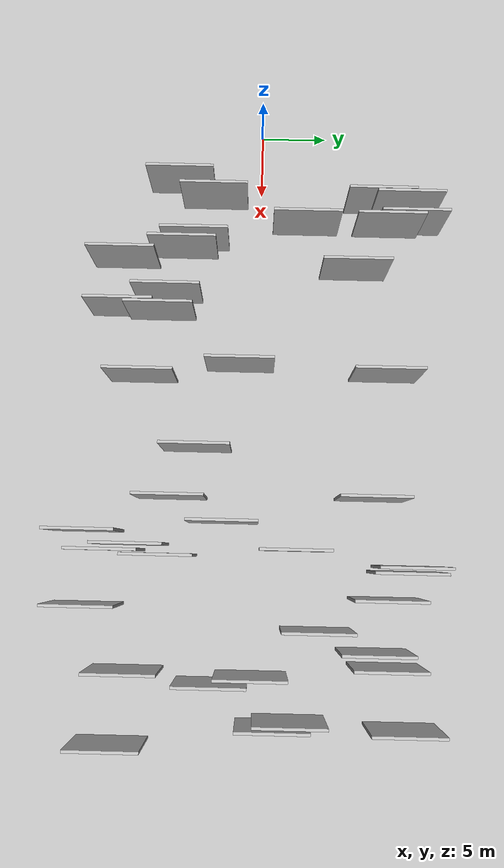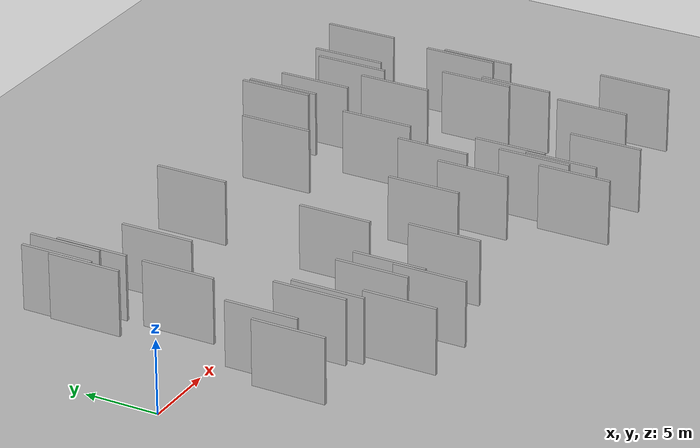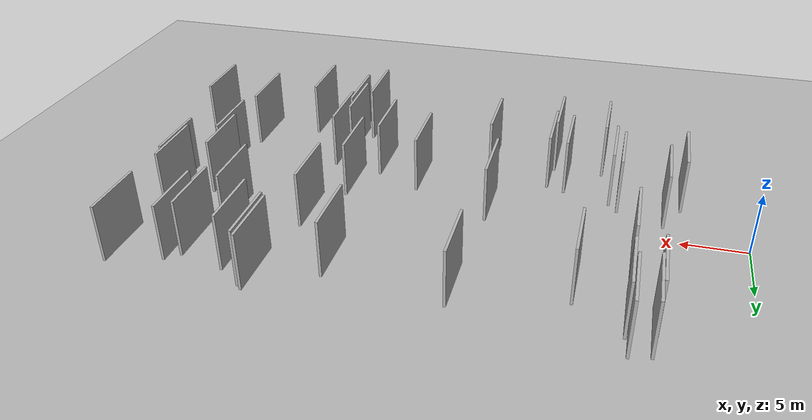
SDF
<?xml version="1.0" encoding="utf-8"?>

<sdf version="1.6">

   <world name="default">

      <gui fullscreen="0">

         <camera name="user_camera">

            <pose>-15 0 4.57585 0 0 0</pose>

            <view_controller>orbit</view_controller>

         </camera>

      </gui>

      <scene>

         <sky>

           <clouds>

             <speed>12</speed>

           </clouds>

         </sky>

         <ambient>0.4 0.4 0.4 1</ambient>

         <background>0.7 0.7 0.7 1</background>

         <shadows>1</shadows>

      </scene>

      <gravity>0 0 -9.8066</gravity>

      <magnetic_field>6e-06 2.3e-05 -4.2e-05</magnetic_field>

      <physics default="0" name="default_physics" type="ode">

         <ode>

            <solver>

               <type>quick</type>

               <iters>10</iters>

               <sor>1.0</sor>

               <use_dynamic_moi_rescaling>0</use_dynamic_moi_rescaling>

            </solver>

            <constraints>

               <cfm>0</cfm>

               <erp>0.2</erp>

               <contact_max_correcting_vel>100</contact_max_correcting_vel>

               <contact_surface_layer>0.001</contact_surface_layer>

            </constraints>

         </ode>

         <max_step_size>0.004</max_step_size>

         <real_time_factor>1</real_time_factor>

         <real_time_update_rate>250</real_time_update_rate>

      </physics>

      <light name="sun" type="directional">

         <cast_shadows>1</cast_shadows>

         <pose>0 0 10 0 0 0</pose>

         <diffuse>0.8 0.8 0.8 1</diffuse>

         <specular>0.2 0.2 0.2 1</specular>

         <attenuation>

            <range>1000</range>

            <constant>0.9</constant>

            <linear>0.01</linear>

            <quadratic>0.001</quadratic>

         </attenuation>

         <direction>-0.5 0.1 -0.9</direction>

      </light>

      <include>

         <name>ground_plane_1</name>

         <uri>model://HANNAS_ground_plane</uri>

         <pose>0 0 0  0 0 0</pose>

      </include>

      <include>

         <name>ground_plane_2</name>

         <uri>model://HANNAS_ground_plane</uri>

         <pose>100 0 0  0 0 0</pose>

      </include>

      <model name="HANNAS_wall_1">

         <static>1</static>

         <pose frame="">8.0894 11.3754 0.0 0.000000 0.000000 1.570796</pose>

         <link name="link">

            <pose frame="">0 0 2.50 0 0 0</pose>

            <collision name="collision">

               <geometry>

                  <box>

                     <size>5.00 0.2 5.00</size>

                  </box>

               </geometry>

               <max_contacts>10</max_contacts>

               <surface>

                  <contact>

                     <ode/>

                  </contact>

                  <bounce/>

                  <friction>

                     <torsional>

                        <ode/>

                     </torsional>

                     <ode/>

                  </friction>

               </surface>

            </collision>

            <visual name="visual">

               <cast_shadows>0</cast_shadows>

               <geometry>

                  <box>

                     <size>5.00 0.2 5.00</size>

                  </box>

               </geometry>

               <material>

                  <script>

                     <uri>model://HANNAS_wall/materials/scripts</uri>

                     <uri>model://HANNAS_wall/materials/textures</uri>

                     <name>vrc/HANNAS_wall</name>

                  </script>

               </material>

            </visual>

            <self_collide>0</self_collide>

            <enable_wind>0</enable_wind>

            <kinematic>0</kinematic>

         </link>

      </model>

      <model name="HANNAS_wall_2">

         <static>1</static>

         <pose frame="">8.3521 9.6411 0.0 0.000000 0.000000 1.570796</pose>

         <link name="link">

            <pose frame="">0 0 2.50 0 0 0</pose>

            <collision name="collision">

               <geometry>

                  <box>

                     <size>5.00 0.2 5.00</size>

                  </box>

               </geometry>

               <max_contacts>10</max_contacts>

               <surface>

                  <contact>

                     <ode/>

                  </contact>

                  <bounce/>

                  <friction>

                     <torsional>

                        <ode/>

                     </torsional>

                     <ode/>

                  </friction>

               </surface>

            </collision>

            <visual name="visual">

               <cast_shadows>0</cast_shadows>

               <geometry>

                  <box>

                     <size>5.00 0.2 5.00</size>

                  </box>

               </geometry>

               <material>

                  <script>

                     <uri>model://HANNAS_wall/materials/scripts</uri>

                     <uri>model://HANNAS_wall/materials/textures</uri>

                     <name>vrc/HANNAS_wall</name>

                  </script>

               </material>

            </visual>

            <self_collide>0</self_collide>

            <enable_wind>0</enable_wind>

            <kinematic>0</kinematic>

         </link>

      </model>

      <model name="HANNAS_wall_3">

         <static>1</static>

         <pose frame="">6.4059 8.9786 0.0 0.000000 0.000000 1.570796</pose>

         <link name="link">

            <pose frame="">0 0 2.50 0 0 0</pose>

            <collision name="collision">

               <geometry>

                  <box>

                     <size>5.00 0.2 5.00</size>

                  </box>

               </geometry>

               <max_contacts>10</max_contacts>

               <surface>

                  <contact>

                     <ode/>

                  </contact>

                  <bounce/>

                  <friction>

                     <torsional>

                        <ode/>

                     </torsional>

                     <ode/>

                  </friction>

               </surface>

            </collision>

            <visual name="visual">

               <cast_shadows>0</cast_shadows>

               <geometry>

                  <box>

                     <size>5.00 0.2 5.00</size>

                  </box>

               </geometry>

               <material>

                  <script>

                     <uri>model://HANNAS_wall/materials/scripts</uri>

                     <uri>model://HANNAS_wall/materials/textures</uri>

                     <name>vrc/HANNAS_wall</name>

                  </script>

               </material>

            </visual>

            <self_collide>0</self_collide>

            <enable_wind>0</enable_wind>

            <kinematic>0</kinematic>

         </link>

      </model>

      <model name="HANNAS_wall_4">

         <static>1</static>

         <pose frame="">29.0090 8.3412 0.0 0.000000 0.000000 1.570796</pose>

         <link name="link">

            <pose frame="">0 0 2.50 0 0 0</pose>

            <collision name="collision">

               <geometry>

                  <box>

                     <size>5.00 0.2 5.00</size>

                  </box>

               </geometry>

               <max_contacts>10</max_contacts>

               <surface>

                  <contact>

                     <ode/>

                  </contact>

                  <bounce/>

                  <friction>

                     <torsional>

                        <ode/>

                     </torsional>

                     <ode/>

                  </friction>

               </surface>

            </collision>

            <visual name="visual">

               <cast_shadows>0</cast_shadows>

               <geometry>

                  <box>

                     <size>5.00 0.2 5.00</size>

                  </box>

               </geometry>

               <material>

                  <script>

                     <uri>model://HANNAS_wall/materials/scripts</uri>

                     <uri>model://HANNAS_wall/materials/textures</uri>

                     <name>vrc/HANNAS_wall</name>

                  </script>

               </material>

            </visual>

            <self_collide>0</self_collide>

            <enable_wind>0</enable_wind>

            <kinematic>0</kinematic>

         </link>

      </model>

      <model name="HANNAS_wall_5">

         <static>1</static>

         <pose frame="">33.7527 11.0372 0.0 0.000000 0.000000 1.570796</pose>

         <link name="link">

            <pose frame="">0 0 2.50 0 0 0</pose>

            <collision name="collision">

               <geometry>

                  <box>

                     <size>5.00 0.2 5.00</size>

                  </box>

               </geometry>

               <max_contacts>10</max_contacts>

               <surface>

                  <contact>

                     <ode/>

                  </contact>

                  <bounce/>

                  <friction>

                     <torsional>

                        <ode/>

                     </torsional>

                     <ode/>

                  </friction>

               </surface>

            </collision>

            <visual name="visual">

               <cast_shadows>0</cast_shadows>

               <geometry>

                  <box>

                     <size>5.00 0.2 5.00</size>

                  </box>

               </geometry>

               <material>

                  <script>

                     <uri>model://HANNAS_wall/materials/scripts</uri>

                     <uri>model://HANNAS_wall/materials/textures</uri>

                     <name>vrc/HANNAS_wall</name>

                  </script>

               </material>

            </visual>

            <self_collide>0</self_collide>

            <enable_wind>0</enable_wind>

            <kinematic>0</kinematic>

         </link>

      </model>

      <model name="HANNAS_wall_6">

         <static>1</static>

         <pose frame="">11.3258 -10.1965 0.0 0.000000 0.000000 1.570796</pose>

         <link name="link">

            <pose frame="">0 0 2.50 0 0 0</pose>

            <collision name="collision">

               <geometry>

                  <box>

                     <size>5.00 0.2 5.00</size>

                  </box>

               </geometry>

               <max_contacts>10</max_contacts>

               <surface>

                  <contact>

                     <ode/>

                  </contact>

                  <bounce/>

                  <friction>

                     <torsional>

                        <ode/>

                     </torsional>

                     <ode/>

                  </friction>

               </surface>

            </collision>

            <visual name="visual">

               <cast_shadows>0</cast_shadows>

               <geometry>

                  <box>

                     <size>5.00 0.2 5.00</size>

                  </box>

               </geometry>

               <material>

                  <script>

                     <uri>model://HANNAS_wall/materials/scripts</uri>

                     <uri>model://HANNAS_wall/materials/textures</uri>

                     <name>vrc/HANNAS_wall</name>

                  </script>

               </material>

            </visual>

            <self_collide>0</self_collide>

            <enable_wind>0</enable_wind>

            <kinematic>0</kinematic>

         </link>

      </model>

      <model name="HANNAS_wall_7">

         <static>1</static>

         <pose frame="">6.6177 11.0654 0.0 0.000000 0.000000 1.570796</pose>

         <link name="link">

            <pose frame="">0 0 2.50 0 0 0</pose>

            <collision name="collision">

               <geometry>

                  <box>

                     <size>5.00 0.2 5.00</size>

                  </box>

               </geometry>

               <max_contacts>10</max_contacts>

               <surface>

                  <contact>

                     <ode/>

                  </contact>

                  <bounce/>

                  <friction>

                     <torsional>

                        <ode/>

                     </torsional>

                     <ode/>

                  </friction>

               </surface>

            </collision>

            <visual name="visual">

               <cast_shadows>0</cast_shadows>

               <geometry>

                  <box>

                     <size>5.00 0.2 5.00</size>

                  </box>

               </geometry>

               <material>

                  <script>

                     <uri>model://HANNAS_wall/materials/scripts</uri>

                     <uri>model://HANNAS_wall/materials/textures</uri>

                     <name>vrc/HANNAS_wall</name>

                  </script>

               </material>

            </visual>

            <self_collide>0</self_collide>

            <enable_wind>0</enable_wind>

            <kinematic>0</kinematic>

         </link>

      </model>

      <model name="HANNAS_wall_8">

         <static>1</static>

         <pose frame="">44.5054 10.3748 0.0 0.000000 0.000000 1.570796</pose>

         <link name="link">

            <pose frame="">0 0 2.50 0 0 0</pose>

            <collision name="collision">

               <geometry>

                  <box>

                     <size>5.00 0.2 5.00</size>

                  </box>

               </geometry>

               <max_contacts>10</max_contacts>

               <surface>

                  <contact>

                     <ode/>

                  </contact>

                  <bounce/>

                  <friction>

                     <torsional>

                        <ode/>

                     </torsional>

                     <ode/>

                  </friction>

               </surface>

            </collision>

            <visual name="visual">

               <cast_shadows>0</cast_shadows>

               <geometry>

                  <box>

                     <size>5.00 0.2 5.00</size>

                  </box>

               </geometry>

               <material>

                  <script>

                     <uri>model://HANNAS_wall/materials/scripts</uri>

                     <uri>model://HANNAS_wall/materials/textures</uri>

                     <name>vrc/HANNAS_wall</name>

                  </script>

               </material>

            </visual>

            <self_collide>0</self_collide>

            <enable_wind>0</enable_wind>

            <kinematic>0</kinematic>

         </link>

      </model>

      <model name="HANNAS_wall_9">

         <static>1</static>

         <pose frame="">32.5370 -8.6810 0.0 0.000000 0.000000 1.570796</pose>

         <link name="link">

            <pose frame="">0 0 2.50 0 0 0</pose>

            <collision name="collision">

               <geometry>

                  <box>

                     <size>5.00 0.2 5.00</size>

                  </box>

               </geometry>

               <max_contacts>10</max_contacts>

               <surface>

                  <contact>

                     <ode/>

                  </contact>

                  <bounce/>

                  <friction>

                     <torsional>

                        <ode/>

                     </torsional>

                     <ode/>

                  </friction>

               </surface>

            </collision>

            <visual name="visual">

               <cast_shadows>0</cast_shadows>

               <geometry>

                  <box>

                     <size>5.00 0.2 5.00</size>

                  </box>

               </geometry>

               <material>

                  <script>

                     <uri>model://HANNAS_wall/materials/scripts</uri>

                     <uri>model://HANNAS_wall/materials/textures</uri>

                     <name>vrc/HANNAS_wall</name>

                  </script>

               </material>

            </visual>

            <self_collide>0</self_collide>

            <enable_wind>0</enable_wind>

            <kinematic>0</kinematic>

         </link>

      </model>

      <model name="HANNAS_wall_10">

         <static>1</static>

         <pose frame="">30.8532 -2.2202 0.0 0.000000 0.000000 1.570796</pose>

         <link name="link">

            <pose frame="">0 0 2.50 0 0 0</pose>

            <collision name="collision">

               <geometry>

                  <box>

                     <size>5.00 0.2 5.00</size>

                  </box>

               </geometry>

               <max_contacts>10</max_contacts>

               <surface>

                  <contact>

                     <ode/>

                  </contact>

                  <bounce/>

                  <friction>

                     <torsional>

                        <ode/>

                     </torsional>

                     <ode/>

                  </friction>

               </surface>

            </collision>

            <visual name="visual">

               <cast_shadows>0</cast_shadows>

               <geometry>

                  <box>

                     <size>5.00 0.2 5.00</size>

                  </box>

               </geometry>

               <material>

                  <script>

                     <uri>model://HANNAS_wall/materials/scripts</uri>

                     <uri>model://HANNAS_wall/materials/textures</uri>

                     <name>vrc/HANNAS_wall</name>

                  </script>

               </material>

            </visual>

            <self_collide>0</self_collide>

            <enable_wind>0</enable_wind>

            <kinematic>0</kinematic>

         </link>

      </model>

      <model name="HANNAS_wall_11">

         <static>1</static>

         <pose frame="">33.2506 -6.6070 0.0 0.000000 0.000000 1.570796</pose>

         <link name="link">

            <pose frame="">0 0 2.50 0 0 0</pose>

            <collision name="collision">

               <geometry>

                  <box>

                     <size>5.00 0.2 5.00</size>

                  </box>

               </geometry>

               <max_contacts>10</max_contacts>

               <surface>

                  <contact>

                     <ode/>

                  </contact>

                  <bounce/>

                  <friction>

                     <torsional>

                        <ode/>

                     </torsional>

                     <ode/>

                  </friction>

               </surface>

            </collision>

            <visual name="visual">

               <cast_shadows>0</cast_shadows>

               <geometry>

                  <box>

                     <size>5.00 0.2 5.00</size>

                  </box>

               </geometry>

               <material>

                  <script>

                     <uri>model://HANNAS_wall/materials/scripts</uri>

                     <uri>model://HANNAS_wall/materials/textures</uri>

                     <name>vrc/HANNAS_wall</name>

                  </script>

               </material>

            </visual>

            <self_collide>0</self_collide>

            <enable_wind>0</enable_wind>

            <kinematic>0</kinematic>

         </link>

      </model>

      <model name="HANNAS_wall_12">

         <static>1</static>

         <pose frame="">45.8108 -9.5668 0.0 0.000000 0.000000 1.570796</pose>

         <link name="link">

            <pose frame="">0 0 2.50 0 0 0</pose>

            <collision name="collision">

               <geometry>

                  <box>

                     <size>5.00 0.2 5.00</size>

                  </box>

               </geometry>

               <max_contacts>10</max_contacts>

               <surface>

                  <contact>

                     <ode/>

                  </contact>

                  <bounce/>

                  <friction>

                     <torsional>

                        <ode/>

                     </torsional>

                     <ode/>

                  </friction>

               </surface>

            </collision>

            <visual name="visual">

               <cast_shadows>0</cast_shadows>

               <geometry>

                  <box>

                     <size>5.00 0.2 5.00</size>

                  </box>

               </geometry>

               <material>

                  <script>

                     <uri>model://HANNAS_wall/materials/scripts</uri>

                     <uri>model://HANNAS_wall/materials/textures</uri>

                     <name>vrc/HANNAS_wall</name>

                  </script>

               </material>

            </visual>

            <self_collide>0</self_collide>

            <enable_wind>0</enable_wind>

            <kinematic>0</kinematic>

         </link>

      </model>

      <model name="HANNAS_wall_13">

         <static>1</static>

         <pose frame="">38.1788 4.4602 0.0 0.000000 0.000000 1.570796</pose>

         <link name="link">

            <pose frame="">0 0 2.50 0 0 0</pose>

            <collision name="collision">

               <geometry>

                  <box>

                     <size>5.00 0.2 5.00</size>

                  </box>

               </geometry>

               <max_contacts>10</max_contacts>

               <surface>

                  <contact>

                     <ode/>

                  </contact>

                  <bounce/>

                  <friction>

                     <torsional>

                        <ode/>

                     </torsional>

                     <ode/>

                  </friction>

               </surface>

            </collision>

            <visual name="visual">

               <cast_shadows>0</cast_shadows>

               <geometry>

                  <box>

                     <size>5.00 0.2 5.00</size>

                  </box>

               </geometry>

               <material>

                  <script>

                     <uri>model://HANNAS_wall/materials/scripts</uri>

                     <uri>model://HANNAS_wall/materials/textures</uri>

                     <name>vrc/HANNAS_wall</name>

                  </script>

               </material>

            </visual>

            <self_collide>0</self_collide>

            <enable_wind>0</enable_wind>

            <kinematic>0</kinematic>

         </link>

      </model>

      <model name="HANNAS_wall_14">

         <static>1</static>

         <pose frame="">19.9923 9.3936 0.0 0.000000 0.000000 1.570796</pose>

         <link name="link">

            <pose frame="">0 0 2.50 0 0 0</pose>

            <collision name="collision">

               <geometry>

                  <box>

                     <size>5.00 0.2 5.00</size>

                  </box>

               </geometry>

               <max_contacts>10</max_contacts>

               <surface>

                  <contact>

                     <ode/>

                  </contact>

                  <bounce/>

                  <friction>

                     <torsional>

                        <ode/>

                     </torsional>

                     <ode/>

                  </friction>

               </surface>

            </collision>

            <visual name="visual">

               <cast_shadows>0</cast_shadows>

               <geometry>

                  <box>

                     <size>5.00 0.2 5.00</size>

                  </box>

               </geometry>

               <material>

                  <script>

                     <uri>model://HANNAS_wall/materials/scripts</uri>

                     <uri>model://HANNAS_wall/materials/textures</uri>

                     <name>vrc/HANNAS_wall</name>

                  </script>

               </material>

            </visual>

            <self_collide>0</self_collide>

            <enable_wind>0</enable_wind>

            <kinematic>0</kinematic>

         </link>

      </model>

      <model name="HANNAS_wall_15">

         <static>1</static>

         <pose frame="">19.4373 -1.2963 0.0 0.000000 0.000000 1.570796</pose>

         <link name="link">

            <pose frame="">0 0 2.50 0 0 0</pose>

            <collision name="collision">

               <geometry>

                  <box>

                     <size>5.00 0.2 5.00</size>

                  </box>

               </geometry>

               <max_contacts>10</max_contacts>

               <surface>

                  <contact>

                     <ode/>

                  </contact>

                  <bounce/>

                  <friction>

                     <torsional>

                        <ode/>

                     </torsional>

                     <ode/>

                  </friction>

               </surface>

            </collision>

            <visual name="visual">

               <cast_shadows>0</cast_shadows>

               <geometry>

                  <box>

                     <size>5.00 0.2 5.00</size>

                  </box>

               </geometry>

               <material>

                  <script>

                     <uri>model://HANNAS_wall/materials/scripts</uri>

                     <uri>model://HANNAS_wall/materials/textures</uri>

                     <name>vrc/HANNAS_wall</name>

                  </script>

               </material>

            </visual>

            <self_collide>0</self_collide>

            <enable_wind>0</enable_wind>

            <kinematic>0</kinematic>

         </link>

      </model>

      <model name="HANNAS_wall_16">

         <static>1</static>

         <pose frame="">40.5126 9.2407 0.0 0.000000 0.000000 1.570796</pose>

         <link name="link">

            <pose frame="">0 0 2.50 0 0 0</pose>

            <collision name="collision">

               <geometry>

                  <box>

                     <size>5.00 0.2 5.00</size>

                  </box>

               </geometry>

               <max_contacts>10</max_contacts>

               <surface>

                  <contact>

                     <ode/>

                  </contact>

                  <bounce/>

                  <friction>

                     <torsional>

                        <ode/>

                     </torsional>

                     <ode/>

                  </friction>

               </surface>

            </collision>

            <visual name="visual">

               <cast_shadows>0</cast_shadows>

               <geometry>

                  <box>

                     <size>5.00 0.2 5.00</size>

                  </box>

               </geometry>

               <material>

                  <script>

                     <uri>model://HANNAS_wall/materials/scripts</uri>

                     <uri>model://HANNAS_wall/materials/textures</uri>

                     <name>vrc/HANNAS_wall</name>

                  </script>

               </material>

            </visual>

            <self_collide>0</self_collide>

            <enable_wind>0</enable_wind>

            <kinematic>0</kinematic>

         </link>

      </model>

      <model name="HANNAS_wall_17">

         <static>1</static>

         <pose frame="">11.9349 7.1002 0.0 0.000000 0.000000 1.570796</pose>

         <link name="link">

            <pose frame="">0 0 2.50 0 0 0</pose>

            <collision name="collision">

               <geometry>

                  <box>

                     <size>5.00 0.2 5.00</size>

                  </box>

               </geometry>

               <max_contacts>10</max_contacts>

               <surface>

                  <contact>

                     <ode/>

                  </contact>

                  <bounce/>

                  <friction>

                     <torsional>

                        <ode/>

                     </torsional>

                     <ode/>

                  </friction>

               </surface>

            </collision>

            <visual name="visual">

               <cast_shadows>0</cast_shadows>

               <geometry>

                  <box>

                     <size>5.00 0.2 5.00</size>

                  </box>

               </geometry>

               <material>

                  <script>

                     <uri>model://HANNAS_wall/materials/scripts</uri>

                     <uri>model://HANNAS_wall/materials/textures</uri>

                     <name>vrc/HANNAS_wall</name>

                  </script>

               </material>

            </visual>

            <self_collide>0</self_collide>

            <enable_wind>0</enable_wind>

            <kinematic>0</kinematic>

         </link>

      </model>

      <model name="HANNAS_wall_18">

         <static>1</static>

         <pose frame="">32.7315 2.8842 0.0 0.000000 0.000000 1.570796</pose>

         <link name="link">

            <pose frame="">0 0 2.50 0 0 0</pose>

            <collision name="collision">

               <geometry>

                  <box>

                     <size>5.00 0.2 5.00</size>

                  </box>

               </geometry>

               <max_contacts>10</max_contacts>

               <surface>

                  <contact>

                     <ode/>

                  </contact>

                  <bounce/>

                  <friction>

                     <torsional>

                        <ode/>

                     </torsional>

                     <ode/>

                  </friction>

               </surface>

            </collision>

            <visual name="visual">

               <cast_shadows>0</cast_shadows>

               <geometry>

                  <box>

                     <size>5.00 0.2 5.00</size>

                  </box>

               </geometry>

               <material>

                  <script>

                     <uri>model://HANNAS_wall/materials/scripts</uri>

                     <uri>model://HANNAS_wall/materials/textures</uri>

                     <name>vrc/HANNAS_wall</name>

                  </script>

               </material>

            </visual>

            <self_collide>0</self_collide>

            <enable_wind>0</enable_wind>

            <kinematic>0</kinematic>

         </link>

      </model>

      <model name="HANNAS_wall_19">

         <static>1</static>

         <pose frame="">20.4028 -8.4945 0.0 0.000000 0.000000 1.570796</pose>

         <link name="link">

            <pose frame="">0 0 2.50 0 0 0</pose>

            <collision name="collision">

               <geometry>

                  <box>

                     <size>5.00 0.2 5.00</size>

                  </box>

               </geometry>

               <max_contacts>10</max_contacts>

               <surface>

                  <contact>

                     <ode/>

                  </contact>

                  <bounce/>

                  <friction>

                     <torsional>

                        <ode/>

                     </torsional>

                     <ode/>

                  </friction>

               </surface>

            </collision>

            <visual name="visual">

               <cast_shadows>0</cast_shadows>

               <geometry>

                  <box>

                     <size>5.00 0.2 5.00</size>

                  </box>

               </geometry>

               <material>

                  <script>

                     <uri>model://HANNAS_wall/materials/scripts</uri>

                     <uri>model://HANNAS_wall/materials/textures</uri>

                     <name>vrc/HANNAS_wall</name>

                  </script>

               </material>

            </visual>

            <self_collide>0</self_collide>

            <enable_wind>0</enable_wind>

            <kinematic>0</kinematic>

         </link>

      </model>

      <model name="HANNAS_wall_20">

         <static>1</static>

         <pose frame="">4.9994 -6.1036 0.0 0.000000 0.000000 1.570796</pose>

         <link name="link">

            <pose frame="">0 0 2.50 0 0 0</pose>

            <collision name="collision">

               <geometry>

                  <box>

                     <size>5.00 0.2 5.00</size>

                  </box>

               </geometry>

               <max_contacts>10</max_contacts>

               <surface>

                  <contact>

                     <ode/>

                  </contact>

                  <bounce/>

                  <friction>

                     <torsional>

                        <ode/>

                     </torsional>

                     <ode/>

                  </friction>

               </surface>

            </collision>

            <visual name="visual">

               <cast_shadows>0</cast_shadows>

               <geometry>

                  <box>

                     <size>5.00 0.2 5.00</size>

                  </box>

               </geometry>

               <material>

                  <script>

                     <uri>model://HANNAS_wall/materials/scripts</uri>

                     <uri>model://HANNAS_wall/materials/textures</uri>

                     <name>vrc/HANNAS_wall</name>

                  </script>

               </material>

            </visual>

            <self_collide>0</self_collide>

            <enable_wind>0</enable_wind>

            <kinematic>0</kinematic>

         </link>

      </model>

      <model name="HANNAS_wall_21">

         <static>1</static>

         <pose frame="">10.4381 -5.7567 0.0 0.000000 0.000000 1.570796</pose>

         <link name="link">

            <pose frame="">0 0 2.50 0 0 0</pose>

            <collision name="collision">

               <geometry>

                  <box>

                     <size>5.00 0.2 5.00</size>

                  </box>

               </geometry>

               <max_contacts>10</max_contacts>

               <surface>

                  <contact>

                     <ode/>

                  </contact>

                  <bounce/>

                  <friction>

                     <torsional>

                        <ode/>

                     </torsional>

                     <ode/>

                  </friction>

               </surface>

            </collision>

            <visual name="visual">

               <cast_shadows>0</cast_shadows>

               <geometry>

                  <box>

                     <size>5.00 0.2 5.00</size>

                  </box>

               </geometry>

               <material>

                  <script>

                     <uri>model://HANNAS_wall/materials/scripts</uri>

                     <uri>model://HANNAS_wall/materials/textures</uri>

                     <name>vrc/HANNAS_wall</name>

                  </script>

               </material>

            </visual>

            <self_collide>0</self_collide>

            <enable_wind>0</enable_wind>

            <kinematic>0</kinematic>

         </link>

      </model>

      <model name="HANNAS_wall_22">

         <static>1</static>

         <pose frame="">44.1370 2.6142 0.0 0.000000 0.000000 1.570796</pose>

         <link name="link">

            <pose frame="">0 0 2.50 0 0 0</pose>

            <collision name="collision">

               <geometry>

                  <box>

                     <size>5.00 0.2 5.00</size>

                  </box>

               </geometry>

               <max_contacts>10</max_contacts>

               <surface>

                  <contact>

                     <ode/>

                  </contact>

                  <bounce/>

                  <friction>

                     <torsional>

                        <ode/>

                     </torsional>

                     <ode/>

                  </friction>

               </surface>

            </collision>

            <visual name="visual">

               <cast_shadows>0</cast_shadows>

               <geometry>

                  <box>

                     <size>5.00 0.2 5.00</size>

                  </box>

               </geometry>

               <material>

                  <script>

                     <uri>model://HANNAS_wall/materials/scripts</uri>

                     <uri>model://HANNAS_wall/materials/textures</uri>

                     <name>vrc/HANNAS_wall</name>

                  </script>

               </material>

            </visual>

            <self_collide>0</self_collide>

            <enable_wind>0</enable_wind>

            <kinematic>0</kinematic>

         </link>

      </model>

      <model name="HANNAS_wall_23">

         <static>1</static>

         <pose frame="">29.1680 -5.9861 0.0 0.000000 0.000000 1.570796</pose>

         <link name="link">

            <pose frame="">0 0 2.50 0 0 0</pose>

            <collision name="collision">

               <geometry>

                  <box>

                     <size>5.00 0.2 5.00</size>

                  </box>

               </geometry>

               <max_contacts>10</max_contacts>

               <surface>

                  <contact>

                     <ode/>

                  </contact>

                  <bounce/>

                  <friction>

                     <torsional>

                        <ode/>

                     </torsional>

                     <ode/>

                  </friction>

               </surface>

            </collision>

            <visual name="visual">

               <cast_shadows>0</cast_shadows>

               <geometry>

                  <box>

                     <size>5.00 0.2 5.00</size>

                  </box>

               </geometry>

               <material>

                  <script>

                     <uri>model://HANNAS_wall/materials/scripts</uri>

                     <uri>model://HANNAS_wall/materials/textures</uri>

                     <name>vrc/HANNAS_wall</name>

                  </script>

               </material>

            </visual>

            <self_collide>0</self_collide>

            <enable_wind>0</enable_wind>

            <kinematic>0</kinematic>

         </link>

      </model>

      <model name="HANNAS_wall_24">

         <static>1</static>

         <pose frame="">36.7551 -11.7292 0.0 0.000000 0.000000 1.570796</pose>

         <link name="link">

            <pose frame="">0 0 2.50 0 0 0</pose>

            <collision name="collision">

               <geometry>

                  <box>

                     <size>5.00 0.2 5.00</size>

                  </box>

               </geometry>

               <max_contacts>10</max_contacts>

               <surface>

                  <contact>

                     <ode/>

                  </contact>

                  <bounce/>

                  <friction>

                     <torsional>

                        <ode/>

                     </torsional>

                     <ode/>

                  </friction>

               </surface>

            </collision>

            <visual name="visual">

               <cast_shadows>0</cast_shadows>

               <geometry>

                  <box>

                     <size>5.00 0.2 5.00</size>

                  </box>

               </geometry>

               <material>

                  <script>

                     <uri>model://HANNAS_wall/materials/scripts</uri>

                     <uri>model://HANNAS_wall/materials/textures</uri>

                     <name>vrc/HANNAS_wall</name>

                  </script>

               </material>

            </visual>

            <self_collide>0</self_collide>

            <enable_wind>0</enable_wind>

            <kinematic>0</kinematic>

         </link>

      </model>

      <model name="HANNAS_wall_25">

         <static>1</static>

         <pose frame="">8.3094 3.4463 0.0 0.000000 0.000000 1.570796</pose>

         <link name="link">

            <pose frame="">0 0 2.50 0 0 0</pose>

            <collision name="collision">

               <geometry>

                  <box>

                     <size>5.00 0.2 5.00</size>

                  </box>

               </geometry>

               <max_contacts>10</max_contacts>

               <surface>

                  <contact>

                     <ode/>

                  </contact>

                  <bounce/>

                  <friction>

                     <torsional>

                        <ode/>

                     </torsional>

                     <ode/>

                  </friction>

               </surface>

            </collision>

            <visual name="visual">

               <cast_shadows>0</cast_shadows>

               <geometry>

                  <box>

                     <size>5.00 0.2 5.00</size>

                  </box>

               </geometry>

               <material>

                  <script>

                     <uri>model://HANNAS_wall/materials/scripts</uri>

                     <uri>model://HANNAS_wall/materials/textures</uri>

                     <name>vrc/HANNAS_wall</name>

                  </script>

               </material>

            </visual>

            <self_collide>0</self_collide>

            <enable_wind>0</enable_wind>

            <kinematic>0</kinematic>

         </link>

      </model>

      <model name="HANNAS_wall_26">

         <static>1</static>

         <pose frame="">41.7641 -2.7536 0.0 0.000000 0.000000 1.570796</pose>

         <link name="link">

            <pose frame="">0 0 2.50 0 0 0</pose>

            <collision name="collision">

               <geometry>

                  <box>

                     <size>5.00 0.2 5.00</size>

                  </box>

               </geometry>

               <max_contacts>10</max_contacts>

               <surface>

                  <contact>

                     <ode/>

                  </contact>

                  <bounce/>

                  <friction>

                     <torsional>

                        <ode/>

                     </torsional>

                     <ode/>

                  </friction>

               </surface>

            </collision>

            <visual name="visual">

               <cast_shadows>0</cast_shadows>

               <geometry>

                  <box>

                     <size>5.00 0.2 5.00</size>

                  </box>

               </geometry>

               <material>

                  <script>

                     <uri>model://HANNAS_wall/materials/scripts</uri>

                     <uri>model://HANNAS_wall/materials/textures</uri>

                     <name>vrc/HANNAS_wall</name>

                  </script>

               </material>

            </visual>

            <self_collide>0</self_collide>

            <enable_wind>0</enable_wind>

            <kinematic>0</kinematic>

         </link>

      </model>

      <model name="HANNAS_wall_27">

         <static>1</static>

         <pose frame="">35.9946 9.3151 0.0 0.000000 0.000000 1.570796</pose>

         <link name="link">

            <pose frame="">0 0 2.50 0 0 0</pose>

            <collision name="collision">

               <geometry>

                  <box>

                     <size>5.00 0.2 5.00</size>

                  </box>

               </geometry>

               <max_contacts>10</max_contacts>

               <surface>

                  <contact>

                     <ode/>

                  </contact>

                  <bounce/>

                  <friction>

                     <torsional>

                        <ode/>

                     </torsional>

                     <ode/>

                  </friction>

               </surface>

            </collision>

            <visual name="visual">

               <cast_shadows>0</cast_shadows>

               <geometry>

                  <box>

                     <size>5.00 0.2 5.00</size>

                  </box>

               </geometry>

               <material>

                  <script>

                     <uri>model://HANNAS_wall/materials/scripts</uri>

                     <uri>model://HANNAS_wall/materials/textures</uri>

                     <name>vrc/HANNAS_wall</name>

                  </script>

               </material>

            </visual>

            <self_collide>0</self_collide>

            <enable_wind>0</enable_wind>

            <kinematic>0</kinematic>

         </link>

      </model>

      <model name="HANNAS_wall_28">

         <static>1</static>

         <pose frame="">6.2665 -3.5372 0.0 0.000000 0.000000 1.570796</pose>

         <link name="link">

            <pose frame="">0 0 2.50 0 0 0</pose>

            <collision name="collision">

               <geometry>

                  <box>

                     <size>5.00 0.2 5.00</size>

                  </box>

               </geometry>

               <max_contacts>10</max_contacts>

               <surface>

                  <contact>

                     <ode/>

                  </contact>

                  <bounce/>

                  <friction>

                     <torsional>

                        <ode/>

                     </torsional>

                     <ode/>

                  </friction>

               </surface>

            </collision>

            <visual name="visual">

               <cast_shadows>0</cast_shadows>

               <geometry>

                  <box>

                     <size>5.00 0.2 5.00</size>

                  </box>

               </geometry>

               <material>

                  <script>

                     <uri>model://HANNAS_wall/materials/scripts</uri>

                     <uri>model://HANNAS_wall/materials/textures</uri>

                     <name>vrc/HANNAS_wall</name>

                  </script>

               </material>

            </visual>

            <self_collide>0</self_collide>

            <enable_wind>0</enable_wind>

            <kinematic>0</kinematic>

         </link>

      </model>

      <model name="HANNAS_wall_29">

         <static>1</static>

         <pose frame="">44.4518 1.4576 0.0 0.000000 0.000000 1.570796</pose>

         <link name="link">

            <pose frame="">0 0 2.50 0 0 0</pose>

            <collision name="collision">

               <geometry>

                  <box>

                     <size>5.00 0.2 5.00</size>

                  </box>

               </geometry>

               <max_contacts>10</max_contacts>

               <surface>

                  <contact>

                     <ode/>

                  </contact>

                  <bounce/>

                  <friction>

                     <torsional>

                        <ode/>

                     </torsional>

                     <ode/>

                  </friction>

               </surface>

            </collision>

            <visual name="visual">

               <cast_shadows>0</cast_shadows>

               <geometry>

                  <box>

                     <size>5.00 0.2 5.00</size>

                  </box>

               </geometry>

               <material>

                  <script>

                     <uri>model://HANNAS_wall/materials/scripts</uri>

                     <uri>model://HANNAS_wall/materials/textures</uri>

                     <name>vrc/HANNAS_wall</name>

                  </script>

               </material>

            </visual>

            <self_collide>0</self_collide>

            <enable_wind>0</enable_wind>

            <kinematic>0</kinematic>

         </link>

      </model>

      <model name="HANNAS_wall_30">

         <static>1</static>

         <pose frame="">39.5309 8.4427 0.0 0.000000 0.000000 1.570796</pose>

         <link name="link">

            <pose frame="">0 0 2.50 0 0 0</pose>

            <collision name="collision">

               <geometry>

                  <box>

                     <size>5.00 0.2 5.00</size>

                  </box>

               </geometry>

               <max_contacts>10</max_contacts>

               <surface>

                  <contact>

                     <ode/>

                  </contact>

                  <bounce/>

                  <friction>

                     <torsional>

                        <ode/>

                     </torsional>

                     <ode/>

                  </friction>

               </surface>

            </collision>

            <visual name="visual">

               <cast_shadows>0</cast_shadows>

               <geometry>

                  <box>

                     <size>5.00 0.2 5.00</size>

                  </box>

               </geometry>

               <material>

                  <script>

                     <uri>model://HANNAS_wall/materials/scripts</uri>

                     <uri>model://HANNAS_wall/materials/textures</uri>

                     <name>vrc/HANNAS_wall</name>

                  </script>

               </material>

            </visual>

            <self_collide>0</self_collide>

            <enable_wind>0</enable_wind>

            <kinematic>0</kinematic>

         </link>

      </model>

      <model name="HANNAS_wall_31">

         <static>1</static>

         <pose frame="">34.1267 10.7024 0.0 0.000000 0.000000 1.570796</pose>

         <link name="link">

            <pose frame="">0 0 2.50 0 0 0</pose>

            <collision name="collision">

               <geometry>

                  <box>

                     <size>5.00 0.2 5.00</size>

                  </box>

               </geometry>

               <max_contacts>10</max_contacts>

               <surface>

                  <contact>

                     <ode/>

                  </contact>

                  <bounce/>

                  <friction>

                     <torsional>

                        <ode/>

                     </torsional>

                     <ode/>

                  </friction>

               </surface>

            </collision>

            <visual name="visual">

               <cast_shadows>0</cast_shadows>

               <geometry>

                  <box>

                     <size>5.00 0.2 5.00</size>

                  </box>

               </geometry>

               <material>

                  <script>

                     <uri>model://HANNAS_wall/materials/scripts</uri>

                     <uri>model://HANNAS_wall/materials/textures</uri>

                     <name>vrc/HANNAS_wall</name>

                  </script>

               </material>

            </visual>

            <self_collide>0</self_collide>

            <enable_wind>0</enable_wind>

            <kinematic>0</kinematic>

         </link>

      </model>

      <model name="HANNAS_wall_32">

         <static>1</static>

         <pose frame="">32.9575 -10.3869 0.0 0.000000 0.000000 1.570796</pose>

         <link name="link">

            <pose frame="">0 0 2.50 0 0 0</pose>

            <collision name="collision">

               <geometry>

                  <box>

                     <size>5.00 0.2 5.00</size>

                  </box>

               </geometry>

               <max_contacts>10</max_contacts>

               <surface>

                  <contact>

                     <ode/>

                  </contact>

                  <bounce/>

                  <friction>

                     <torsional>

                        <ode/>

                     </torsional>

                     <ode/>

                  </friction>

               </surface>

            </collision>

            <visual name="visual">

               <cast_shadows>0</cast_shadows>

               <geometry>

                  <box>

                     <size>5.00 0.2 5.00</size>

                  </box>

               </geometry>

               <material>

                  <script>

                     <uri>model://HANNAS_wall/materials/scripts</uri>

                     <uri>model://HANNAS_wall/materials/textures</uri>

                     <name>vrc/HANNAS_wall</name>

                  </script>

               </material>

            </visual>

            <self_collide>0</self_collide>

            <enable_wind>0</enable_wind>

            <kinematic>0</kinematic>

         </link>

      </model>

      <model name="HANNAS_wall_33">

         <static>1</static>

         <pose frame="">15.4725 -7.2676 0.0 0.000000 0.000000 1.570796</pose>

         <link name="link">

            <pose frame="">0 0 2.50 0 0 0</pose>

            <collision name="collision">

               <geometry>

                  <box>

                     <size>5.00 0.2 5.00</size>

                  </box>

               </geometry>

               <max_contacts>10</max_contacts>

               <surface>

                  <contact>

                     <ode/>

                  </contact>

                  <bounce/>

                  <friction>

                     <torsional>

                        <ode/>

                     </torsional>

                     <ode/>

                  </friction>

               </surface>

            </collision>

            <visual name="visual">

               <cast_shadows>0</cast_shadows>

               <geometry>

                  <box>

                     <size>5.00 0.2 5.00</size>

                  </box>

               </geometry>

               <material>

                  <script>

                     <uri>model://HANNAS_wall/materials/scripts</uri>

                     <uri>model://HANNAS_wall/materials/textures</uri>

                     <name>vrc/HANNAS_wall</name>

                  </script>

               </material>

            </visual>

            <self_collide>0</self_collide>

            <enable_wind>0</enable_wind>

            <kinematic>0</kinematic>

         </link>

      </model>

      <model name="HANNAS_wall_34">

         <static>1</static>

         <pose frame="">9.7674 -4.8933 0.0 0.000000 0.000000 1.570796</pose>

         <link name="link">

            <pose frame="">0 0 2.50 0 0 0</pose>

            <collision name="collision">

               <geometry>

                  <box>

                     <size>5.00 0.2 5.00</size>

                  </box>

               </geometry>

               <max_contacts>10</max_contacts>

               <surface>

                  <contact>

                     <ode/>

                  </contact>

                  <bounce/>

                  <friction>

                     <torsional>

                        <ode/>

                     </torsional>

                     <ode/>

                  </friction>

               </surface>

            </collision>

            <visual name="visual">

               <cast_shadows>0</cast_shadows>

               <geometry>

                  <box>

                     <size>5.00 0.2 5.00</size>

                  </box>

               </geometry>

               <material>

                  <script>

                     <uri>model://HANNAS_wall/materials/scripts</uri>

                     <uri>model://HANNAS_wall/materials/textures</uri>

                     <name>vrc/HANNAS_wall</name>

                  </script>

               </material>

            </visual>

            <self_collide>0</self_collide>

            <enable_wind>0</enable_wind>

            <kinematic>0</kinematic>

         </link>

      </model>

      <model name="HANNAS_wall_35">

         <static>1</static>

         <pose frame="">14.0715 -6.8076 0.0 0.000000 0.000000 1.570796</pose>

         <link name="link">

            <pose frame="">0 0 2.50 0 0 0</pose>

            <collision name="collision">

               <geometry>

                  <box>

                     <size>5.00 0.2 5.00</size>

                  </box>

               </geometry>

               <max_contacts>10</max_contacts>

               <surface>

                  <contact>

                     <ode/>

                  </contact>

                  <bounce/>

                  <friction>

                     <torsional>

                        <ode/>

                     </torsional>

                     <ode/>

                  </friction>

               </surface>

            </collision>

            <visual name="visual">

               <cast_shadows>0</cast_shadows>

               <geometry>

                  <box>

                     <size>5.00 0.2 5.00</size>

                  </box>

               </geometry>

               <material>

                  <script>

                     <uri>model://HANNAS_wall/materials/scripts</uri>

                     <uri>model://HANNAS_wall/materials/textures</uri>

                     <name>vrc/HANNAS_wall</name>

                  </script>

               </material>

            </visual>

            <self_collide>0</self_collide>

            <enable_wind>0</enable_wind>

            <kinematic>0</kinematic>

         </link>

      </model>

      <model name="HANNAS_wall_36">

         <static>1</static>

         <pose frame="">25.6191 -4.2986 0.0 0.000000 0.000000 1.570796</pose>

         <link name="link">

            <pose frame="">0 0 2.50 0 0 0</pose>

            <collision name="collision">

               <geometry>

                  <box>

                     <size>5.00 0.2 5.00</size>

                  </box>

               </geometry>

               <max_contacts>10</max_contacts>

               <surface>

                  <contact>

                     <ode/>

                  </contact>

                  <bounce/>

                  <friction>

                     <torsional>

                        <ode/>

                     </torsional>

                     <ode/>

                  </friction>

               </surface>

            </collision>

            <visual name="visual">

               <cast_shadows>0</cast_shadows>

               <geometry>

                  <box>

                     <size>5.00 0.2 5.00</size>

                  </box>

               </geometry>

               <material>

                  <script>

                     <uri>model://HANNAS_wall/materials/scripts</uri>

                     <uri>model://HANNAS_wall/materials/textures</uri>

                     <name>vrc/HANNAS_wall</name>

                  </script>

               </material>

            </visual>

            <self_collide>0</self_collide>

            <enable_wind>0</enable_wind>

            <kinematic>0</kinematic>

         </link>

      </model>

      <model name="HANNAS_wall_37">

         <static>1</static>

         <pose frame="">15.2413 -10.1642 0.0 0.000000 0.000000 1.570796</pose>

         <link name="link">

            <pose frame="">0 0 2.50 0 0 0</pose>

            <collision name="collision">

               <geometry>

                  <box>

                     <size>5.00 0.2 5.00</size>

                  </box>

               </geometry>

               <max_contacts>10</max_contacts>

               <surface>

                  <contact>

                     <ode/>

                  </contact>

                  <bounce/>

                  <friction>

                     <torsional>

                        <ode/>

                     </torsional>

                     <ode/>

                  </friction>

               </surface>

            </collision>

            <visual name="visual">

               <cast_shadows>0</cast_shadows>

               <geometry>

                  <box>

                     <size>5.00 0.2 5.00</size>

                  </box>

               </geometry>

               <material>

                  <script>

                     <uri>model://HANNAS_wall/materials/scripts</uri>

                     <uri>model://HANNAS_wall/materials/textures</uri>

                     <name>vrc/HANNAS_wall</name>

                  </script>

               </material>

            </visual>

            <self_collide>0</self_collide>

            <enable_wind>0</enable_wind>

            <kinematic>0</kinematic>

         </link>

      </model>

      <model name="HANNAS_wall_38">

         <static>1</static>

         <pose frame="">41.0589 -8.6977 0.0 0.000000 0.000000 1.570796</pose>

         <link name="link">

            <pose frame="">0 0 2.50 0 0 0</pose>

            <collision name="collision">

               <geometry>

                  <box>

                     <size>5.00 0.2 5.00</size>

                  </box>

               </geometry>

               <max_contacts>10</max_contacts>

               <surface>

                  <contact>

                     <ode/>

                  </contact>

                  <bounce/>

                  <friction>

                     <torsional>

                        <ode/>

                     </torsional>

                     <ode/>

                  </friction>

               </surface>

            </collision>

            <visual name="visual">

               <cast_shadows>0</cast_shadows>

               <geometry>

                  <box>

                     <size>5.00 0.2 5.00</size>

                  </box>

               </geometry>

               <material>

                  <script>

                     <uri>model://HANNAS_wall/materials/scripts</uri>

                     <uri>model://HANNAS_wall/materials/textures</uri>

                     <name>vrc/HANNAS_wall</name>

                  </script>

               </material>

            </visual>

            <self_collide>0</self_collide>

            <enable_wind>0</enable_wind>

            <kinematic>0</kinematic>

         </link>

      </model>

      <model name="HANNAS_wall_39">

         <static>1</static>

         <pose frame="">31.6488 -11.9695 0.0 0.000000 0.000000 1.570796</pose>

         <link name="link">

            <pose frame="">0 0 2.50 0 0 0</pose>

            <collision name="collision">

               <geometry>

                  <box>

                     <size>5.00 0.2 5.00</size>

                  </box>

               </geometry>

               <max_contacts>10</max_contacts>

               <surface>

                  <contact>

                     <ode/>

                  </contact>

                  <bounce/>

                  <friction>

                     <torsional>

                        <ode/>

                     </torsional>

                     <ode/>

                  </friction>

               </surface>

            </collision>

            <visual name="visual">

               <cast_shadows>0</cast_shadows>

               <geometry>

                  <box>

                     <size>5.00 0.2 5.00</size>

                  </box>

               </geometry>

               <material>

                  <script>

                     <uri>model://HANNAS_wall/materials/scripts</uri>

                     <uri>model://HANNAS_wall/materials/textures</uri>

                     <name>vrc/HANNAS_wall</name>

                  </script>

               </material>

            </visual>

            <self_collide>0</self_collide>

            <enable_wind>0</enable_wind>

            <kinematic>0</kinematic>

         </link>

      </model>

      <model name="HANNAS_wall_40">

         <static>1</static>

         <pose frame="">41.2710 -0.0401 0.0 0.000000 0.000000 1.570796</pose>

         <link name="link">

            <pose frame="">0 0 2.50 0 0 0</pose>

            <collision name="collision">

               <geometry>

                  <box>

                     <size>5.00 0.2 5.00</size>

                  </box>

               </geometry>

               <max_contacts>10</max_contacts>

               <surface>

                  <contact>

                     <ode/>

                  </contact>

                  <bounce/>

                  <friction>

                     <torsional>

                        <ode/>

                     </torsional>

                     <ode/>

                  </friction>

               </surface>

            </collision>

            <visual name="visual">

               <cast_shadows>0</cast_shadows>

               <geometry>

                  <box>

                     <size>5.00 0.2 5.00</size>

                  </box>

               </geometry>

               <material>

                  <script>

                     <uri>model://HANNAS_wall/materials/scripts</uri>

                     <uri>model://HANNAS_wall/materials/textures</uri>

                     <name>vrc/HANNAS_wall</name>

                  </script>

               </material>

            </visual>

            <self_collide>0</self_collide>

            <enable_wind>0</enable_wind>

            <kinematic>0</kinematic>

         </link>

      </model>

   </world>

</sdf>
